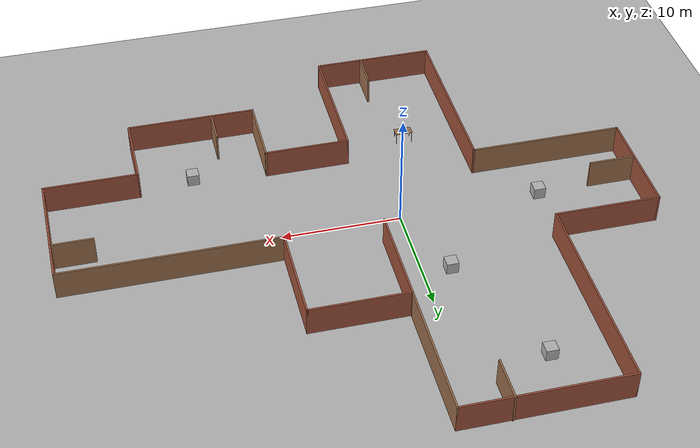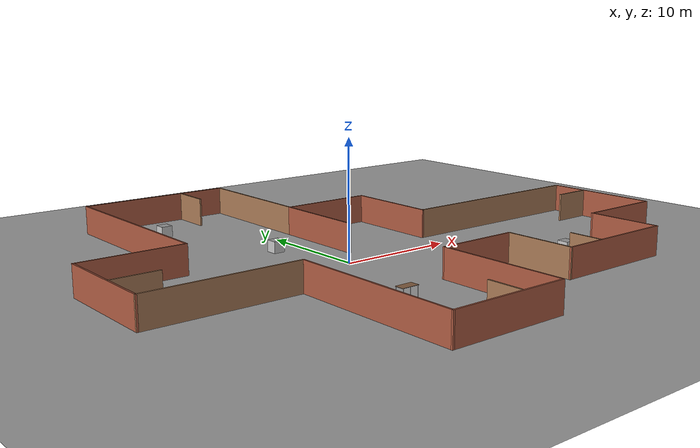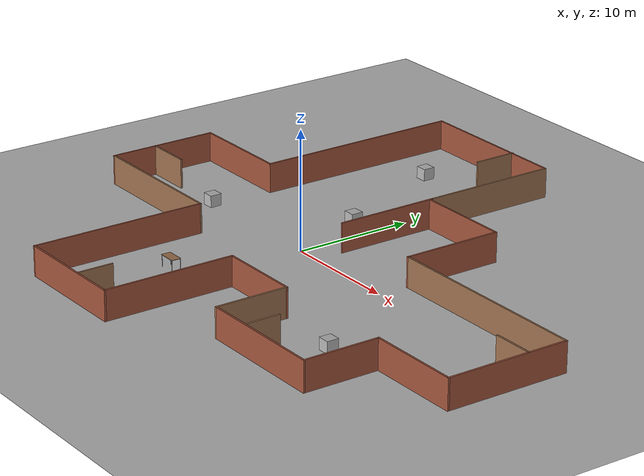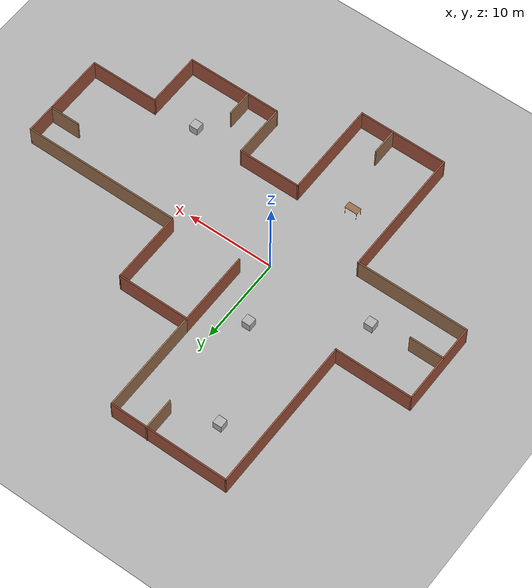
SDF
<sdf version="1.9">
 <world name="default">
  <plugin filename="gz-sim-physics-system" name="gz::sim::systems::Physics"/>
  <plugin filename="gz-sim-user-commands-system" name="gz::sim::systems::UserCommands"/>
  <plugin filename="gz-sim-scene-broadcaster-system" name="gz::sim::systems::SceneBroadcaster"/>
  <plugin filename="gz-sim-sensors-system" name="gz::sim::systems::Sensors">
   <render_engine>ogre2</render_engine>
  </plugin>
  <light name="sun" type="directional">
   <pose>0 0 10 0 -0 0</pose>
   <diffuse>0.8 0.8 0.8 1</diffuse>
   <specular>0.2 0.2 0.2 1</specular>
   <attenuation>
    <range>1000</range>
    <constant>0.9</constant>
    <linear>0.01</linear>
    <quadratic>0.001</quadratic>
   </attenuation>
   <direction>-0.5 0.1 -0.9</direction>
   <spot><inner_angle>0</inner_angle><outer_angle>0</outer_angle><falloff>0</falloff></spot>
  </light>
  <model name="ground_plane">
   <static>1</static>
   <link name="link">
    <collision name="collision">
     <geometry><plane><normal>0 0 1</normal><size>100 100</size></plane></geometry>
     <surface><friction><ode><mu>100</mu><mu2>50</mu2></ode></friction></surface>
    </collision>
    <visual name="visual">
     <cast_shadows>0</cast_shadows>
     <geometry><plane><normal>0 0 1</normal><size>100 100</size></plane></geometry>
     <material>
      <ambient>0.7 0.7 0.7 1</ambient>
      <diffuse>0.7 0.7 0.7 1</diffuse>
      <specular>0.1 0.1 0.1 1</specular>
     </material>
    </visual>
   </link>
  </model>
  <gravity>0 0 -9.8</gravity>
  <magnetic_field>6e-06 2.3e-05 -4.2e-05</magnetic_field>
  <atmosphere type="adiabatic"/>
  <physics name="1ms" type="ignored">
   <max_step_size>0.001</max_step_size>
   <real_time_factor>1</real_time_factor>
   <real_time_update_rate>1000</real_time_update_rate>
  </physics>
  <scene><ambient>0.4 0.4 0.4 1</ambient><background>0.7 0.7 0.7 1</background><shadows>1</shadows></scene>
  <audio><device>default</device></audio>
  <spherical_coordinates>
   <surface_model>EARTH_WGS84</surface_model>
   <latitude_deg>0</latitude_deg>
   <longitude_deg>0</longitude_deg>
   <elevation>0</elevation>
   <heading_deg>0</heading_deg>
  </spherical_coordinates>
  <model name="roo2">
   <pose>3.97285 1.7924 0 0 -0 0</pose>
   <link name="Wall_11">
    <collision name="Wall_11_Collision">
     <geometry><box><size>8.25 0.15 2.5</size></box></geometry>
     <pose>0 0 1.25 0 -0 0</pose>
    </collision>
    <visual name="Wall_11_Visual">
     <pose>0 0 1.25 0 -0 0</pose>
     <geometry><box><size>8.25 0.15 2.5</size></box></geometry>
     <material>
      <ambient>0.55 0.28 0.20 1</ambient>
      <diffuse>0.62 0.32 0.23 1</diffuse>
      <specular>0.05 0.05 0.05 1</specular>
     </material>
     <meta><layer>0</layer></meta>
    </visual>
    <pose>2.225 9.11699 0 0 -0 0</pose>
   </link>
   <link name="Wall_12">
    <collision name="Wall_12_Collision">
     <geometry><box><size>8.5 0.15 2.5</size></box></geometry>
     <pose>0 0 1.25 0 -0 0</pose>
    </collision>
    <visual name="Wall_12_Visual">
     <pose>0 0 1.25 0 -0 0</pose>
     <geometry><box><size>8.5 0.15 2.5</size></box></geometry>
     <material>
      <ambient>0.55 0.28 0.20 1</ambient>
      <diffuse>0.62 0.32 0.23 1</diffuse>
      <specular>0.05 0.05 0.05 1</specular>
     </material>
     <meta><layer>0</layer></meta>
    </visual>
    <pose>6.275 4.94199 0 0 -0 -1.5708</pose>
   </link>
   <link name="Wall_13">
    <collision name="Wall_13_Collision">
     <geometry><box><size>18.25 0.15 2.5</size></box></geometry>
     <pose>0 0 1.25 0 -0 0</pose>
    </collision>
    <visual name="Wall_13_Visual">
     <pose>0 0 1.25 0 -0 0</pose>
     <geometry><box><size>18.25 0.15 2.5</size></box></geometry>
     <material>
      <ambient>0.52 0.37 0.26 1</ambient>
      <diffuse>0.60 0.43 0.30 1</diffuse>
      <specular>0.05 0.05 0.05 1</specular>
     </material>
     <meta><layer>0</layer></meta>
    </visual>
    <pose>15.325 0.766994 0 0 -0 0</pose>
   </link>
   <link name="Wall_14">
    <collision name="Wall_14_Collision">
     <geometry><box><size>10.5 0.15 2.5</size></box></geometry>
     <pose>0 0 1.25 0 -0 0</pose>
    </collision>
    <visual name="Wall_14_Visual">
     <pose>0 0 1.25 0 -0 0</pose>
     <geometry><box><size>10.5 0.15 2.5</size></box></geometry>
     <material>
      <ambient>0.55 0.28 0.20 1</ambient>
      <diffuse>0.62 0.32 0.23 1</diffuse>
      <specular>0.05 0.05 0.05 1</specular>
     </material>
     <meta><layer>0</layer></meta>
    </visual>
    <pose>24.375 -4.40801 0 0 -0 -1.5708</pose>
   </link>
   <link name="Wall_15">
    <collision name="Wall_15_Collision">
     <geometry><box><size>8 0.15 2.5</size></box></geometry>
     <pose>0 0 1.25 0 -0 0</pose>
    </collision>
    <visual name="Wall_15_Visual">
     <pose>0 0 1.25 0 -0 0</pose>
     <geometry><box><size>8 0.15 2.5</size></box></geometry>
     <material>
      <ambient>0.55 0.28 0.20 1</ambient>
      <diffuse>0.62 0.32 0.23 1</diffuse>
      <specular>0.05 0.05 0.05 1</specular>
     </material>
     <meta><layer>0</layer></meta>
    </visual>
    <pose>20.45 -9.58301 0 0 -0 3.14159</pose>
   </link>
   <link name="Wall_16">
    <collision name="Wall_16_Collision">
     <geometry><box><size>6.5 0.15 2.5</size></box></geometry>
     <pose>0 0 1.25 0 -0 0</pose>
    </collision>
    <visual name="Wall_16_Visual">
     <pose>0 0 1.25 0 -0 0</pose>
     <geometry><box><size>6.5 0.15 2.5</size></box></geometry>
     <material>
      <ambient>0.55 0.28 0.20 1</ambient>
      <diffuse>0.62 0.32 0.23 1</diffuse>
      <specular>0.05 0.05 0.05 1</specular>
     </material>
     <meta><layer>0</layer></meta>
    </visual>
    <pose>16.525 -12.758 0 0 -0 -1.5708</pose>
   </link>
   <link name="Wall_17">
    <collision name="Wall_17_Collision">
     <geometry><box><size>11 0.15 2.5</size></box></geometry>
     <pose>0 0 1.25 0 -0 0</pose>
    </collision>
    <visual name="Wall_17_Visual">
     <pose>0 0 1.25 0 -0 0</pose>
     <geometry><box><size>11 0.15 2.5</size></box></geometry>
     <material>
      <ambient>0.55 0.28 0.20 1</ambient>
      <diffuse>0.62 0.32 0.23 1</diffuse>
      <specular>0.05 0.05 0.05 1</specular>
     </material>
     <meta><layer>0</layer></meta>
    </visual>
    <pose>11.1 -15.933 0 0 -0 3.14159</pose>
   </link>
   <link name="Wall_18">
    <collision name="Wall_18_Collision">
     <geometry><box><size>6.25 0.15 2.5</size></box></geometry>
     <pose>0 0 1.25 0 -0 0</pose>
    </collision>
    <visual name="Wall_18_Visual">
     <pose>0 0 1.25 0 -0 0</pose>
     <geometry><box><size>6.25 0.15 2.5</size></box></geometry>
     <material>
      <ambient>0.52 0.37 0.26 1</ambient>
      <diffuse>0.60 0.43 0.30 1</diffuse>
      <specular>0.05 0.05 0.05 1</specular>
     </material>
     <meta><layer>0</layer></meta>
    </visual>
    <pose>5.675 -12.883 0 0 -0 1.5708</pose>
   </link>
   <link name="Wall_19">
    <collision name="Wall_19_Collision">
     <geometry><box><size>7.25 0.15 2.5</size></box></geometry>
     <pose>0 0 1.25 0 -0 0</pose>
    </collision>
    <visual name="Wall_19_Visual">
     <pose>0 0 1.25 0 -0 0</pose>
     <geometry><box><size>7.25 0.15 2.5</size></box></geometry>
     <material>
      <ambient>0.55 0.28 0.20 1</ambient>
      <diffuse>0.62 0.32 0.23 1</diffuse>
      <specular>0.05 0.05 0.05 1</specular>
     </material>
     <meta><layer>0</layer></meta>
    </visual>
    <pose>2.125 -9.83301 0 0 -0 3.14159</pose>
   </link>
   <link name="Wall_20">
    <collision name="Wall_20_Collision">
     <geometry><box><size>11.25 0.15 2.5</size></box></geometry>
     <pose>0 0 1.25 0 -0 0</pose>
    </collision>
    <visual name="Wall_20_Visual">
     <pose>0 0 1.25 0 -0 0</pose>
     <geometry><box><size>11.25 0.15 2.5</size></box></geometry>
     <material>
      <ambient>0.55 0.28 0.20 1</ambient>
      <diffuse>0.62 0.32 0.23 1</diffuse>
      <specular>0.05 0.05 0.05 1</specular>
     </material>
     <meta><layer>0</layer></meta>
    </visual>
    <pose>-1.425 -15.383 0 0 -0 -1.5708</pose>
   </link>
   <link name="Wall_21">
    <collision name="Wall_21_Collision">
     <geometry><box><size>10.25 0.15 2.5</size></box></geometry>
     <pose>0 0 1.25 0 -0 0</pose>
    </collision>
    <visual name="Wall_21_Visual">
     <pose>0 0 1.25 0 -0 0</pose>
     <geometry><box><size>10.25 0.15 2.5</size></box></geometry>
     <material>
      <ambient>0.55 0.28 0.20 1</ambient>
      <diffuse>0.62 0.32 0.23 1</diffuse>
      <specular>0.05 0.05 0.05 1</specular>
     </material>
     <meta><layer>0</layer></meta>
    </visual>
    <pose>-6.475 -20.933 0 0 -0 3.14159</pose>
   </link>
   <link name="Wall_22">
    <collision name="Wall_22_Collision">
     <geometry><box><size>15 0.15 2.5</size></box></geometry>
     <pose>0 0 1.25 0 -0 0</pose>
    </collision>
    <visual name="Wall_22_Visual">
     <pose>0 0 1.25 0 -0 0</pose>
     <geometry><box><size>15 0.15 2.5</size></box></geometry>
     <material>
      <ambient>0.55 0.28 0.20 1</ambient>
      <diffuse>0.62 0.32 0.23 1</diffuse>
      <specular>0.05 0.05 0.05 1</specular>
     </material>
     <meta><layer>0</layer></meta>
    </visual>
    <pose>-11.525 -13.508 0 0 -0 1.5708</pose>
   </link>
   <link name="Wall_23">
    <collision name="Wall_23_Collision">
     <geometry><box><size>13 0.15 2.5</size></box></geometry>
     <pose>0 0 1.25 0 -0 0</pose>
    </collision>
    <visual name="Wall_23_Visual">
     <pose>0 0 1.25 0 -0 0</pose>
     <geometry><box><size>13 0.15 2.5</size></box></geometry>
     <material>
      <ambient>0.52 0.37 0.26 1</ambient>
      <diffuse>0.60 0.43 0.30 1</diffuse>
      <specular>0.05 0.05 0.05 1</specular>
     </material>
     <meta><layer>0</layer></meta>
    </visual>
    <pose>-17.95 -6.08301 0 0 -0 3.14159</pose>
   </link>
   <link name="Wall_24">
    <collision name="Wall_24_Collision">
     <geometry><box><size>9.5 0.15 2.5</size></box></geometry>
     <pose>0 0 1.25 0 -0 0</pose>
    </collision>
    <visual name="Wall_24_Visual">
     <pose>0 0 1.25 0 -0 0</pose>
     <geometry><box><size>9.5 0.15 2.5</size></box></geometry>
     <material>
      <ambient>0.55 0.28 0.20 1</ambient>
      <diffuse>0.62 0.32 0.23 1</diffuse>
      <specular>0.05 0.05 0.05 1</specular>
     </material>
     <meta><layer>0</layer></meta>
    </visual>
    <pose>-24.375 -1.40801 0 0 -0 1.5708</pose>
   </link>
   <link name="Wall_25">
    <collision name="Wall_25_Collision">
     <geometry><box><size>9 0.15 2.5</size></box></geometry>
     <pose>0 0 1.25 0 -0 0</pose>
    </collision>
    <visual name="Wall_25_Visual">
     <pose>0 0 1.25 0 -0 0</pose>
     <geometry><box><size>9 0.15 2.5</size></box></geometry>
     <material>
      <ambient>0.55 0.28 0.20 1</ambient>
      <diffuse>0.62 0.32 0.23 1</diffuse>
      <specular>0.05 0.05 0.05 1</specular>
     </material>
     <meta><layer>0</layer></meta>
    </visual>
    <pose>-19.95 3.26699 0 0 -0 0</pose>
   </link>
   <link name="Wall_26">
    <collision name="Wall_26_Collision">
     <geometry><box><size>17.75 0.15 2.5</size></box></geometry>
     <pose>0 0 1.25 0 -0 0</pose>
    </collision>
    <visual name="Wall_26_Visual">
     <pose>0 0 1.25 0 -0 0</pose>
     <geometry><box><size>17.75 0.15 2.5</size></box></geometry>
     <material>
      <ambient>0.55 0.28 0.20 1</ambient>
      <diffuse>0.62 0.32 0.23 1</diffuse>
      <specular>0.05 0.05 0.05 1</specular>
     </material>
     <meta><layer>0</layer></meta>
    </visual>
    <pose>-15.525 12.067 0 0 -0 1.5708</pose>
   </link>
   <link name="Wall_27">
    <collision name="Wall_27_Collision">
     <geometry><box><size>13.75 0.15 2.5</size></box></geometry>
     <pose>0 0 1.25 0 -0 0</pose>
    </collision>
    <visual name="Wall_27_Visual">
     <pose>0 0 1.25 0 -0 0</pose>
     <geometry><box><size>13.75 0.15 2.5</size></box></geometry>
     <material>
      <ambient>0.55 0.28 0.20 1</ambient>
      <diffuse>0.62 0.32 0.23 1</diffuse>
      <specular>0.05 0.05 0.05 1</specular>
     </material>
     <meta><layer>0</layer></meta>
    </visual>
    <pose>-8.725 20.867 0 0 -0 0</pose>
   </link>
   <link name="Wall_28">
    <collision name="Wall_28_Collision">
     <geometry><box><size>11.75 0.15 2.5</size></box></geometry>
     <pose>0 0 1.25 0 -0 0</pose>
    </collision>
    <visual name="Wall_28_Visual">
     <pose>0 0 1.25 0 -0 0</pose>
     <geometry><box><size>11.75 0.15 2.5</size></box></geometry>
     <material>
      <ambient>0.52 0.37 0.26 1</ambient>
      <diffuse>0.60 0.43 0.30 1</diffuse>
      <specular>0.05 0.05 0.05 1</specular>
     </material>
     <meta><layer>0</layer></meta>
    </visual>
    <pose>-1.925 15.067 0 0 -0 -1.5708</pose>
   </link>
   <link name="Wall_29">
    <collision name="Wall_29_Collision">
     <geometry><box><size>8.75 0.15 2.5</size></box></geometry>
     <pose>0 0 1.25 0 -0 0</pose>
    </collision>
    <visual name="Wall_29_Visual">
     <pose>0 0 1.25 0 -0 0</pose>
     <geometry><box><size>8.75 0.15 2.5</size></box></geometry>
     <material>
      <ambient>0.55 0.28 0.20 1</ambient>
      <diffuse>0.62 0.32 0.23 1</diffuse>
      <specular>0.05 0.05 0.05 1</specular>
     </material>
     <meta><layer>0</layer></meta>
    </visual>
    <pose>-1.925 4.96699 0 0 -0 -1.5708</pose>
   </link>
   <link name="Wall_38">
    <collision name="Wall_38_Collision">
     <geometry><box><size>4 0.15 2.5</size></box></geometry>
     <pose>0 0 1.25 0 -0 0</pose>
    </collision>
    <visual name="Wall_38_Visual">
     <pose>0 0 1.25 0 -0 0</pose>
     <geometry><box><size>4 0.15 2.5</size></box></geometry>
     <material>
      <ambient>0.52 0.37 0.26 1</ambient>
      <diffuse>0.60 0.43 0.30 1</diffuse>
      <specular>0.05 0.05 0.05 1</specular>
     </material>
     <meta><layer>0</layer></meta>
    </visual>
    <pose>-22.445 -2.12308 0 0 -0 0</pose>
   </link>
   <link name="Wall_40">
    <collision name="Wall_40_Collision">
     <geometry><box><size>3 0.15 2.5</size></box></geometry>
     <pose>0 0 1.25 0 -0 0</pose>
    </collision>
    <visual name="Wall_40_Visual">
     <pose>0 0 1.25 0 -0 0</pose>
     <geometry><box><size>3 0.15 2.5</size></box></geometry>
     <material>
      <ambient>0.52 0.37 0.26 1</ambient>
      <diffuse>0.60 0.43 0.30 1</diffuse>
      <specular>0.05 0.05 0.05 1</specular>
     </material>
     <meta><layer>0</layer></meta>
    </visual>
    <pose>-5.29149 -19.3635 0 0 -0 1.5708</pose>
   </link>
   <link name="Wall_42">
    <collision name="Wall_42_Collision">
     <geometry><box><size>3.75 0.15 2.5</size></box></geometry>
     <pose>0 0 1.25 0 -0 0</pose>
    </collision>
    <visual name="Wall_42_Visual">
     <pose>0 0 1.25 0 -0 0</pose>
     <geometry><box><size>3.75 0.15 2.5</size></box></geometry>
     <material>
      <ambient>0.52 0.37 0.26 1</ambient>
      <diffuse>0.60 0.43 0.30 1</diffuse>
      <specular>0.05 0.05 0.05 1</specular>
     </material>
     <meta><layer>0</layer></meta>
    </visual>
    <pose>-6.16628 19.133 0 0 -0 -1.5708</pose>
   </link>
   <link name="Wall_46">
    <collision name="Wall_46_Collision">
     <geometry><box><size>3.5 0.15 2.5</size></box></geometry>
     <pose>0 0 1.25 0 -0 0</pose>
    </collision>
    <visual name="Wall_46_Visual">
     <pose>0 0 1.25 0 -0 0</pose>
     <geometry><box><size>3.5 0.15 2.5</size></box></geometry>
     <material>
      <ambient>0.52 0.37 0.26 1</ambient>
      <diffuse>0.60 0.43 0.30 1</diffuse>
      <specular>0.05 0.05 0.05 1</specular>
     </material>
     <meta><layer>0</layer></meta>
    </visual>
    <pose>22.6341 -2.57211 0 0 -0 3.14159</pose>
   </link>
   <link name="Wall_48">
    <collision name="Wall_48_Collision">
     <geometry><box><size>3 0.15 2.5</size></box></geometry>
     <pose>0 0 1.25 0 -0 0</pose>
    </collision>
    <visual name="Wall_48_Visual">
     <pose>0 0 1.25 0 -0 0</pose>
     <geometry><box><size>3 0.15 2.5</size></box></geometry>
     <material>
      <ambient>0.52 0.37 0.26 1</ambient>
      <diffuse>0.60 0.43 0.30 1</diffuse>
      <specular>0.05 0.05 0.05 1</specular>
     </material>
     <meta><layer>0</layer></meta>
    </visual>
    <pose>9.3236 -14.4487 0 0 -0 1.5708</pose>
   </link>
   <static>1</static>
  </model>
  <model name="table">
   <static>1</static>
   <link name="link">
    <collision name="surface">
     <pose>0 0 1 0 -0 0</pose>
     <geometry><box><size>1.5 0.8 0.03</size></box></geometry>
     <surface><friction><ode><mu>0.6</mu><mu2>0.6</mu2></ode></friction></surface>
    </collision>
    <visual name="visual1">
     <pose>0 0 1 0 -0 0</pose>
     <geometry><box><size>1.5 0.8 0.03</size></box></geometry>
     <material>
      <ambient>0.52 0.37 0.26 1</ambient>
      <diffuse>0.60 0.43 0.30 1</diffuse>
      <specular>0.05 0.05 0.05 1</specular>
     </material>
    </visual>
    <collision name="front_left_leg">
     <pose>0.68 0.38 0.5 0 -0 0</pose>
     <geometry><cylinder><radius>0.02</radius><length>1</length></cylinder></geometry>
    </collision>
    <visual name="front_left_leg">
     <pose>0.68 0.38 0.5 0 -0 0</pose>
     <geometry><cylinder><radius>0.02</radius><length>1</length></cylinder></geometry>
     <material>
      <ambient>0.7 0.7 0.7 1</ambient>
      <diffuse>0.7 0.7 0.7 1</diffuse>
      <specular>0.1 0.1 0.1 1</specular>
     </material>
    </visual>
    <collision name="front_right_leg">
     <pose>0.68 -0.38 0.5 0 -0 0</pose>
     <geometry><cylinder><radius>0.02</radius><length>1</length></cylinder></geometry>
    </collision>
    <visual name="front_right_leg">
     <pose>0.68 -0.38 0.5 0 -0 0</pose>
     <geometry><cylinder><radius>0.02</radius><length>1</length></cylinder></geometry>
     <material>
      <ambient>0.7 0.7 0.7 1</ambient>
      <diffuse>0.7 0.7 0.7 1</diffuse>
      <specular>0.1 0.1 0.1 1</specular>
     </material>
    </visual>
    <collision name="back_right_leg">
     <pose>-0.68 -0.38 0.5 0 -0 0</pose>
     <geometry><cylinder><radius>0.02</radius><length>1</length></cylinder></geometry>
    </collision>
    <visual name="back_right_leg">
     <pose>-0.68 -0.38 0.5 0 -0 0</pose>
     <geometry><cylinder><radius>0.02</radius><length>1</length></cylinder></geometry>
     <material>
      <ambient>0.7 0.7 0.7 1</ambient>
      <diffuse>0.7 0.7 0.7 1</diffuse>
      <specular>0.1 0.1 0.1 1</specular>
     </material>
    </visual>
    <collision name="back_left_leg">
     <pose>-0.68 0.38 0.5 0 -0 0</pose>
     <geometry><cylinder><radius>0.02</radius><length>1</length></cylinder></geometry>
    </collision>
    <visual name="back_left_leg">
     <pose>-0.68 0.38 0.5 0 -0 0</pose>
     <geometry><cylinder><radius>0.02</radius><length>1</length></cylinder></geometry>
     <material>
      <ambient>0.7 0.7 0.7 1</ambient>
      <diffuse>0.7 0.7 0.7 1</diffuse>
      <specular>0.1 0.1 0.1 1</specular>
     </material>
    </visual>
   </link>
   <pose>-2.91134 -9.98777 0 0 -0 0</pose>
  </model>
  <model name="unit_box">
   <pose>-6.85636 17.3761 0.5 0 -0 0</pose>
   <link name="link">
    <inertial>
     <mass>1</mass>
     <inertia>
      <ixx>0.166667</ixx>
      <ixy>0</ixy>
      <ixz>0</ixz>
      <iyy>0.166667</iyy>
      <iyz>0</iyz>
      <izz>0.166667</izz>
     </inertia>
    </inertial>
    <collision name="collision"><geometry><box><size>1 1 1</size></box></geometry></collision>
    <visual name="visual">
     <geometry><box><size>1 1 1</size></box></geometry>
     <material>
      <ambient>0.7 0.7 0.7 1</ambient>
      <diffuse>0.7 0.7 0.7 1</diffuse>
      <specular>0.1 0.1 0.1 1</specular>
     </material>
    </visual>
   </link>
  </model>
  <model name="unit_box_0">
   <pose>-12.0164 -0.237309 0.5 -0 -0 -0</pose>
   <link name="link">
    <inertial>
     <mass>1</mass>
     <inertia>
      <ixx>0.166667</ixx>
      <ixy>0</ixy>
      <ixz>0</ixz>
      <iyy>0.166667</iyy>
      <iyz>0</iyz>
      <izz>0.166667</izz>
     </inertia>
    </inertial>
    <collision name="collision"><geometry><box><size>1 1 1</size></box></geometry></collision>
    <visual name="visual">
     <geometry><box><size>1 1 1</size></box></geometry>
     <material>
      <ambient>0.7 0.7 0.7 1</ambient>
      <diffuse>0.7 0.7 0.7 1</diffuse>
      <specular>0.1 0.1 0.1 1</specular>
     </material>
    </visual>
   </link>
  </model>
  <model name="unit_box_1">
   <pose>-2.33571 6.73572 0.5 0 -0 0</pose>
   <link name="link">
    <inertial>
     <mass>1</mass>
     <inertia>
      <ixx>0.166667</ixx>
      <ixy>0</ixy>
      <ixz>0</ixz>
      <iyy>0.166667</iyy>
      <iyz>0</iyz>
      <izz>0.166667</izz>
     </inertia>
    </inertial>
    <collision name="collision"><geometry><box><size>1 1 1</size></box></geometry></collision>
    <visual name="visual">
     <geometry><box><size>1 1 1</size></box></geometry>
     <material>
      <ambient>0.7 0.7 0.7 1</ambient>
      <diffuse>0.7 0.7 0.7 1</diffuse>
      <specular>0.1 0.1 0.1 1</specular>
     </material>
    </visual>
   </link>
  </model>
  <model name="unit_box_2">
   <pose>15.9027 -8.73483 0.5 -0 -0 -0</pose>
   <link name="link">
    <inertial>
     <mass>1</mass>
     <inertia>
      <ixx>0.166667</ixx>
      <ixy>0</ixy>
      <ixz>0</ixz>
      <iyy>0.166667</iyy>
      <iyz>0</iyz>
      <izz>0.166667</izz>
     </inertia>
    </inertial>
    <collision name="collision"><geometry><box><size>1 1 1</size></box></geometry></collision>
    <visual name="visual">
     <geometry><box><size>1 1 1</size></box></geometry>
     <material>
      <ambient>0.7 0.7 0.7 1</ambient>
      <diffuse>0.7 0.7 0.7 1</diffuse>
      <specular>0.1 0.1 0.1 1</specular>
     </material>
    </visual>
   </link>
  </model>
 </world>
</sdf>
